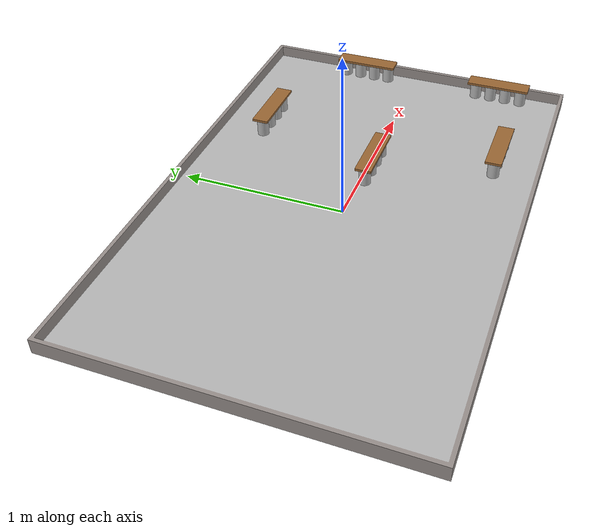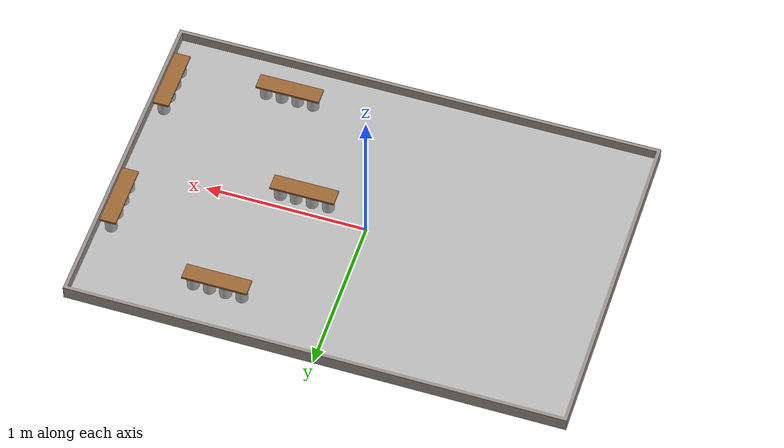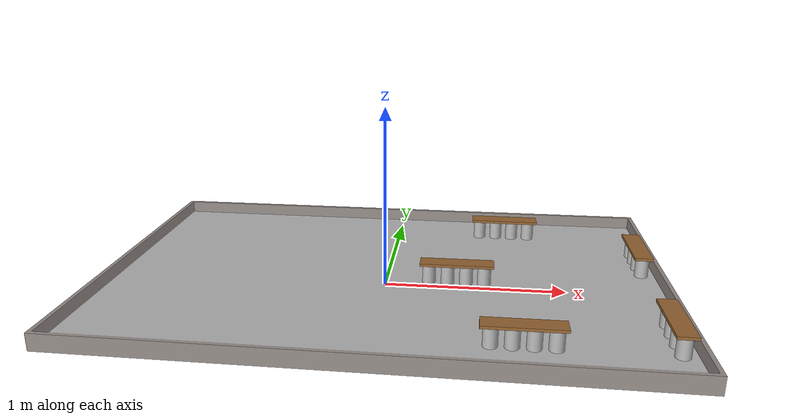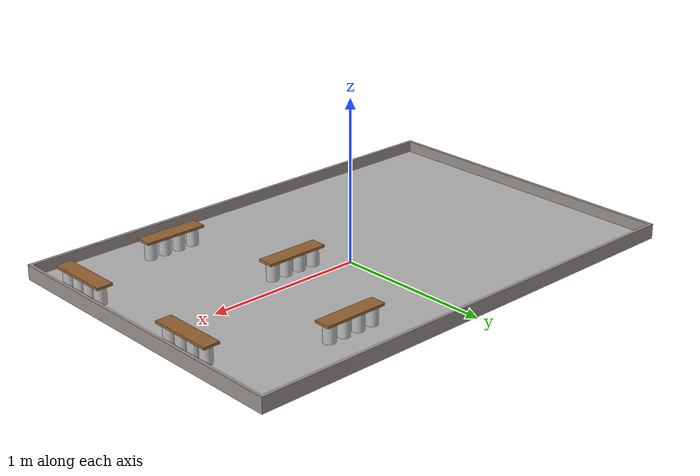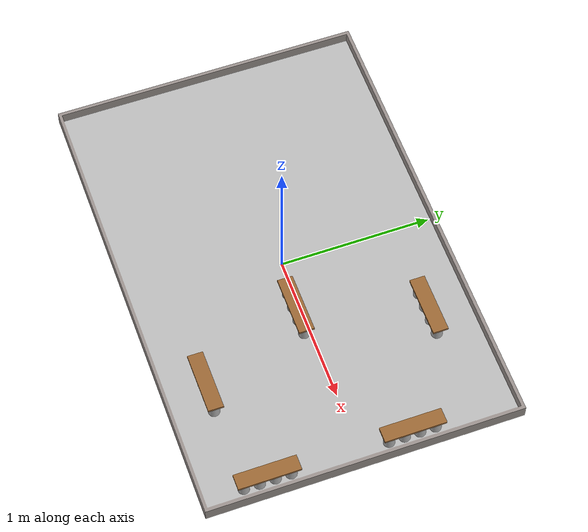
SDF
<sdf version="1.7">
 <world name="default">
  <model name="Table2025">
   <static>1</static>
   <link name="table">
    <inertial>
     <mass>108.217</mass>
     <inertia>
      <ixx>42.128</ixx>
      <ixy>-4.25029e-14</ixy>
      <ixz>6.83557e-16</ixz>
      <iyy>90.1988</iyy>
      <iyz>0</iyz>
      <izz>132.268</izz>
     </inertia>
    </inertial>
    <collision name="table_collision">
     <geometry><mesh><scale>1 1 1</scale><uri>model://Table2025/meshes/Table2025.dae</uri></mesh></geometry>
    </collision>
    <visual name="table_visual">
     <geometry><mesh><scale>1 1 1</scale><uri>model://Table2025/meshes/Table2025.dae</uri></mesh></geometry>
    </visual>
   </link>
  </model>
  <model name="Can_31">
   <static>0</static>
   <plugin name="gz::sim::systems::Label" filename="gz-sim-label-system"><label>11</label></plugin>
   <link name="link_0">
    <inertial>
     <pose>0 0 0.02 0 -0 0</pose>
     <mass>0.025</mass>
     <inertia><ixx>2.5e-05</ixx><ixy>0</ixy><ixz>0</ixz><iyy>2.5e-05</iyy><iyz>0</iyz><izz>8e-06</izz></inertia>
    </inertial>
    <visual name="visual">
     <geometry><mesh><uri>model://Can/meshes/can.dae</uri><scale>1 1 1</scale></mesh></geometry>
    </visual>
    <collision name="collision">
     <max_contacts>20</max_contacts>
     <pose>0 0 0.0545 0 -0 0</pose>
     <geometry><cylinder><radius>0.0365</radius><length>0.109</length></cylinder></geometry>
     <surface>
      <friction><ode><mu>0.9</mu><mu2>0.9</mu2></ode></friction>
      <contact>
       <ode>
        <soft_cfm>0</soft_cfm>
        <soft_erp>0.2</soft_erp>
        <kp>10</kp>
        <kd>1e+09</kd>
        <max_vel>0.01</max_vel>
        <min_depth>0.001</min_depth>
       </ode>
      </contact>
     </surface>
    </collision>
   </link>
   <pose>0.524631 0.725786 0.047323 -3.6e-05 5.5e-05 0</pose>
  </model>
  <model name="Can_33">
   <static>0</static>
   <plugin name="gz::sim::systems::Label" filename="gz-sim-label-system"><label>11</label></plugin>
   <link name="link_0">
    <inertial>
     <pose>0 0 0.02 0 -0 0</pose>
     <mass>0.025</mass>
     <inertia><ixx>2.5e-05</ixx><ixy>0</ixy><ixz>0</ixz><iyy>2.5e-05</iyy><iyz>0</iyz><izz>8e-06</izz></inertia>
    </inertial>
    <visual name="visual">
     <geometry><mesh><uri>model://Can/meshes/can.dae</uri><scale>1 1 1</scale></mesh></geometry>
    </visual>
    <collision name="collision">
     <max_contacts>20</max_contacts>
     <pose>0 0 0.0545 0 -0 0</pose>
     <geometry><cylinder><radius>0.0365</radius><length>0.109</length></cylinder></geometry>
     <surface>
      <friction><ode><mu>0.9</mu><mu2>0.9</mu2></ode></friction>
      <contact>
       <ode>
        <soft_cfm>0</soft_cfm>
        <soft_erp>0.2</soft_erp>
        <kp>10</kp>
        <kd>1e+09</kd>
        <max_vel>0.01</max_vel>
        <min_depth>0.001</min_depth>
       </ode>
      </contact>
     </surface>
    </collision>
   </link>
   <pose>0.625282 0.726048 0.047322 -4.3e-05 5.6e-05 0</pose>
  </model>
  <model name="Can_34">
   <static>0</static>
   <plugin name="gz::sim::systems::Label" filename="gz-sim-label-system"><label>11</label></plugin>
   <link name="link_0">
    <inertial>
     <pose>0 0 0.02 0 -0 0</pose>
     <mass>0.025</mass>
     <inertia><ixx>2.5e-05</ixx><ixy>0</ixy><ixz>0</ixz><iyy>2.5e-05</iyy><iyz>0</iyz><izz>8e-06</izz></inertia>
    </inertial>
    <visual name="visual">
     <geometry><mesh><uri>model://Can/meshes/can.dae</uri><scale>1 1 1</scale></mesh></geometry>
    </visual>
    <collision name="collision">
     <max_contacts>20</max_contacts>
     <pose>0 0 0.0545 0 -0 0</pose>
     <geometry><cylinder><radius>0.0365</radius><length>0.109</length></cylinder></geometry>
     <surface>
      <friction><ode><mu>0.9</mu><mu2>0.9</mu2></ode></friction>
      <contact>
       <ode>
        <soft_cfm>0</soft_cfm>
        <soft_erp>0.2</soft_erp>
        <kp>10</kp>
        <kd>1e+09</kd>
        <max_vel>0.01</max_vel>
        <min_depth>0.001</min_depth>
       </ode>
      </contact>
     </surface>
    </collision>
   </link>
   <pose>0.72493 0.725553 0.047324 -2.9e-05 5.7e-05 0</pose>
  </model>
  <model name="Can_35">
   <static>0</static>
   <plugin name="gz::sim::systems::Label" filename="gz-sim-label-system"><label>11</label></plugin>
   <link name="link_0">
    <inertial>
     <pose>0 0 0.02 0 -0 0</pose>
     <mass>0.025</mass>
     <inertia><ixx>2.5e-05</ixx><ixy>0</ixy><ixz>0</ixz><iyy>2.5e-05</iyy><iyz>0</iyz><izz>8e-06</izz></inertia>
    </inertial>
    <visual name="visual">
     <geometry><mesh><uri>model://Can/meshes/can.dae</uri><scale>1 1 1</scale></mesh></geometry>
    </visual>
    <collision name="collision">
     <max_contacts>20</max_contacts>
     <pose>0 0 0.0545 0 -0 0</pose>
     <geometry><cylinder><radius>0.0365</radius><length>0.109</length></cylinder></geometry>
     <surface>
      <friction><ode><mu>0.9</mu><mu2>0.9</mu2></ode></friction>
      <contact>
       <ode>
        <soft_cfm>0</soft_cfm>
        <soft_erp>0.2</soft_erp>
        <kp>10</kp>
        <kd>1e+09</kd>
        <max_vel>0.01</max_vel>
        <min_depth>0.001</min_depth>
       </ode>
      </contact>
     </surface>
    </collision>
   </link>
   <pose>0.825085 0.725093 0.047323 -2e-05 5.4e-05 0</pose>
  </model>
  <model name="Can_36">
   <static>0</static>
   <plugin name="gz::sim::systems::Label" filename="gz-sim-label-system"><label>11</label></plugin>
   <link name="link_0">
    <inertial>
     <pose>0 0 0.02 0 -0 0</pose>
     <mass>0.025</mass>
     <inertia><ixx>2.5e-05</ixx><ixy>0</ixy><ixz>0</ixz><iyy>2.5e-05</iyy><iyz>0</iyz><izz>8e-06</izz></inertia>
    </inertial>
    <visual name="visual">
     <geometry><mesh><uri>model://Can/meshes/can.dae</uri><scale>1 1 1</scale></mesh></geometry>
    </visual>
    <collision name="collision">
     <max_contacts>20</max_contacts>
     <pose>0 0 0.0545 0 -0 0</pose>
     <geometry><cylinder><radius>0.0365</radius><length>0.109</length></cylinder></geometry>
     <surface>
      <friction><ode><mu>0.9</mu><mu2>0.9</mu2></ode></friction>
      <contact>
       <ode>
        <soft_cfm>0</soft_cfm>
        <soft_erp>0.2</soft_erp>
        <kp>10</kp>
        <kd>1e+09</kd>
        <max_vel>0.01</max_vel>
        <min_depth>0.001</min_depth>
       </ode>
      </contact>
     </surface>
    </collision>
   </link>
   <pose>1.42524 0.475414 0.047322 -0.000246 0.000298 0</pose>
  </model>
  <model name="Can_37">
   <static>0</static>
   <plugin name="gz::sim::systems::Label" filename="gz-sim-label-system"><label>11</label></plugin>
   <link name="link_0">
    <inertial>
     <pose>0 0 0.02 0 -0 0</pose>
     <mass>0.025</mass>
     <inertia><ixx>2.5e-05</ixx><ixy>0</ixy><ixz>0</ixz><iyy>2.5e-05</iyy><iyz>0</iyz><izz>8e-06</izz></inertia>
    </inertial>
    <visual name="visual">
     <geometry><mesh><uri>model://Can/meshes/can.dae</uri><scale>1 1 1</scale></mesh></geometry>
    </visual>
    <collision name="collision">
     <max_contacts>20</max_contacts>
     <pose>0 0 0.0545 0 -0 0</pose>
     <geometry><cylinder><radius>0.0365</radius><length>0.109</length></cylinder></geometry>
     <surface>
      <friction><ode><mu>0.9</mu><mu2>0.9</mu2></ode></friction>
      <contact>
       <ode>
        <soft_cfm>0</soft_cfm>
        <soft_erp>0.2</soft_erp>
        <kp>10</kp>
        <kd>1e+09</kd>
        <max_vel>0.01</max_vel>
        <min_depth>0.001</min_depth>
       </ode>
      </contact>
     </surface>
    </collision>
   </link>
   <pose>1.42521 0.375005 0.047323 -0.000219 0.000711 3e-06</pose>
  </model>
  <model name="Can_38">
   <static>0</static>
   <plugin name="gz::sim::systems::Label" filename="gz-sim-label-system"><label>11</label></plugin>
   <link name="link_0">
    <inertial>
     <pose>0 0 0.02 0 -0 0</pose>
     <mass>0.025</mass>
     <inertia><ixx>2.5e-05</ixx><ixy>0</ixy><ixz>0</ixz><iyy>2.5e-05</iyy><iyz>0</iyz><izz>8e-06</izz></inertia>
    </inertial>
    <visual name="visual">
     <geometry><mesh><uri>model://Can/meshes/can.dae</uri><scale>1 1 1</scale></mesh></geometry>
    </visual>
    <collision name="collision">
     <max_contacts>20</max_contacts>
     <pose>0 0 0.0545 0 -0 0</pose>
     <geometry><cylinder><radius>0.0365</radius><length>0.109</length></cylinder></geometry>
     <surface>
      <friction><ode><mu>0.9</mu><mu2>0.9</mu2></ode></friction>
      <contact>
       <ode>
        <soft_cfm>0</soft_cfm>
        <soft_erp>0.2</soft_erp>
        <kp>10</kp>
        <kd>1e+09</kd>
        <max_vel>0.01</max_vel>
        <min_depth>0.001</min_depth>
       </ode>
      </contact>
     </surface>
    </collision>
   </link>
   <pose>1.42548 0.274974 0.047329 0.000549 0.000614 6e-06</pose>
  </model>
  <model name="Can_10">
   <static>0</static>
   <plugin name="gz::sim::systems::Label" filename="gz-sim-label-system"><label>11</label></plugin>
   <link name="link_0">
    <inertial>
     <pose>0 0 0.02 0 -0 0</pose>
     <mass>0.025</mass>
     <inertia><ixx>2.5e-05</ixx><ixy>0</ixy><ixz>0</ixz><iyy>2.5e-05</iyy><iyz>0</iyz><izz>8e-06</izz></inertia>
    </inertial>
    <visual name="visual">
     <geometry><mesh><uri>model://Can/meshes/can.dae</uri><scale>1 1 1</scale></mesh></geometry>
    </visual>
    <collision name="collision">
     <max_contacts>20</max_contacts>
     <pose>0 0 0.0545 0 -0 0</pose>
     <geometry><cylinder><radius>0.0365</radius><length>0.109</length></cylinder></geometry>
     <surface>
      <friction><ode><mu>0.9</mu><mu2>0.9</mu2></ode></friction>
      <contact>
       <ode>
        <soft_cfm>0</soft_cfm>
        <soft_erp>0.2</soft_erp>
        <kp>10</kp>
        <kd>1e+09</kd>
        <max_vel>0.01</max_vel>
        <min_depth>0.001</min_depth>
       </ode>
      </contact>
     </surface>
    </collision>
   </link>
   <pose>1.42613 0.174484 0.047323 0 -0 0</pose>
  </model>
  <model name="Can_11">
   <static>0</static>
   <plugin name="gz::sim::systems::Label" filename="gz-sim-label-system"><label>11</label></plugin>
   <link name="link_0">
    <inertial>
     <pose>0 0 0.02 0 -0 0</pose>
     <mass>0.025</mass>
     <inertia><ixx>2.5e-05</ixx><ixy>0</ixy><ixz>0</ixz><iyy>2.5e-05</iyy><iyz>0</iyz><izz>8e-06</izz></inertia>
    </inertial>
    <visual name="visual">
     <geometry><mesh><uri>model://Can/meshes/can.dae</uri><scale>1 1 1</scale></mesh></geometry>
    </visual>
    <collision name="collision">
     <max_contacts>20</max_contacts>
     <pose>0 0 0.0545 0 -0 0</pose>
     <geometry><cylinder><radius>0.0365</radius><length>0.109</length></cylinder></geometry>
     <surface>
      <friction><ode><mu>0.9</mu><mu2>0.9</mu2></ode></friction>
      <contact>
       <ode>
        <soft_cfm>0</soft_cfm>
        <soft_erp>0.2</soft_erp>
        <kp>10</kp>
        <kd>1e+09</kd>
        <max_vel>0.01</max_vel>
        <min_depth>0.001</min_depth>
       </ode>
      </contact>
     </surface>
    </collision>
   </link>
   <pose>1.4255 -0.449936 0.047322 -0.00011 0.00019 0</pose>
  </model>
  <model name="Can_12">
   <static>0</static>
   <plugin name="gz::sim::systems::Label" filename="gz-sim-label-system"><label>11</label></plugin>
   <link name="link_0">
    <inertial>
     <pose>0 0 0.02 0 -0 0</pose>
     <mass>0.025</mass>
     <inertia><ixx>2.5e-05</ixx><ixy>0</ixy><ixz>0</ixz><iyy>2.5e-05</iyy><iyz>0</iyz><izz>8e-06</izz></inertia>
    </inertial>
    <visual name="visual">
     <geometry><mesh><uri>model://Can/meshes/can.dae</uri><scale>1 1 1</scale></mesh></geometry>
    </visual>
    <collision name="collision">
     <max_contacts>20</max_contacts>
     <pose>0 0 0.0545 0 -0 0</pose>
     <geometry><cylinder><radius>0.0365</radius><length>0.109</length></cylinder></geometry>
     <surface>
      <friction><ode><mu>0.9</mu><mu2>0.9</mu2></ode></friction>
      <contact>
       <ode>
        <soft_cfm>0</soft_cfm>
        <soft_erp>0.2</soft_erp>
        <kp>10</kp>
        <kd>1e+09</kd>
        <max_vel>0.01</max_vel>
        <min_depth>0.001</min_depth>
       </ode>
      </contact>
     </surface>
    </collision>
   </link>
   <pose>1.42505 -0.550146 0.047323 -0.000122 0.000419 2e-06</pose>
  </model>
  <model name="Can_13">
   <static>0</static>
   <plugin name="gz::sim::systems::Label" filename="gz-sim-label-system"><label>11</label></plugin>
   <link name="link_0">
    <inertial>
     <pose>0 0 0.02 0 -0 0</pose>
     <mass>0.025</mass>
     <inertia><ixx>2.5e-05</ixx><ixy>0</ixy><ixz>0</ixz><iyy>2.5e-05</iyy><iyz>0</iyz><izz>8e-06</izz></inertia>
    </inertial>
    <visual name="visual">
     <geometry><mesh><uri>model://Can/meshes/can.dae</uri><scale>1 1 1</scale></mesh></geometry>
    </visual>
    <collision name="collision">
     <max_contacts>20</max_contacts>
     <pose>0 0 0.0545 0 -0 0</pose>
     <geometry><cylinder><radius>0.0365</radius><length>0.109</length></cylinder></geometry>
     <surface>
      <friction><ode><mu>0.9</mu><mu2>0.9</mu2></ode></friction>
      <contact>
       <ode>
        <soft_cfm>0</soft_cfm>
        <soft_erp>0.2</soft_erp>
        <kp>10</kp>
        <kd>1e+09</kd>
        <max_vel>0.01</max_vel>
        <min_depth>0.001</min_depth>
       </ode>
      </contact>
     </surface>
    </collision>
   </link>
   <pose>1.42525 -0.649943 0.047323 -0.000126 0.000479 1e-06</pose>
  </model>
  <model name="Can_14">
   <static>0</static>
   <plugin name="gz::sim::systems::Label" filename="gz-sim-label-system"><label>11</label></plugin>
   <link name="link_0">
    <inertial>
     <pose>0 0 0.02 0 -0 0</pose>
     <mass>0.025</mass>
     <inertia><ixx>2.5e-05</ixx><ixy>0</ixy><ixz>0</ixz><iyy>2.5e-05</iyy><iyz>0</iyz><izz>8e-06</izz></inertia>
    </inertial>
    <visual name="visual">
     <geometry><mesh><uri>model://Can/meshes/can.dae</uri><scale>1 1 1</scale></mesh></geometry>
    </visual>
    <collision name="collision">
     <max_contacts>20</max_contacts>
     <pose>0 0 0.0545 0 -0 0</pose>
     <geometry><cylinder><radius>0.0365</radius><length>0.109</length></cylinder></geometry>
     <surface>
      <friction><ode><mu>0.9</mu><mu2>0.9</mu2></ode></friction>
      <contact>
       <ode>
        <soft_cfm>0</soft_cfm>
        <soft_erp>0.2</soft_erp>
        <kp>10</kp>
        <kd>1e+09</kd>
        <max_vel>0.01</max_vel>
        <min_depth>0.001</min_depth>
       </ode>
      </contact>
     </surface>
    </collision>
   </link>
   <pose>1.42505 -0.75008 0.047323 0 -0 0</pose>
  </model>
  <model name="Can_15">
   <static>0</static>
   <plugin name="gz::sim::systems::Label" filename="gz-sim-label-system"><label>11</label></plugin>
   <link name="link_0">
    <inertial>
     <pose>0 0 0.02 0 -0 0</pose>
     <mass>0.025</mass>
     <inertia><ixx>2.5e-05</ixx><ixy>0</ixy><ixz>0</ixz><iyy>2.5e-05</iyy><iyz>0</iyz><izz>8e-06</izz></inertia>
    </inertial>
    <visual name="visual">
     <geometry><mesh><uri>model://Can/meshes/can.dae</uri><scale>1 1 1</scale></mesh></geometry>
    </visual>
    <collision name="collision">
     <max_contacts>20</max_contacts>
     <pose>0 0 0.0545 0 -0 0</pose>
     <geometry><cylinder><radius>0.0365</radius><length>0.109</length></cylinder></geometry>
     <surface>
      <friction><ode><mu>0.9</mu><mu2>0.9</mu2></ode></friction>
      <contact>
       <ode>
        <soft_cfm>0</soft_cfm>
        <soft_erp>0.2</soft_erp>
        <kp>10</kp>
        <kd>1e+09</kd>
        <max_vel>0.01</max_vel>
        <min_depth>0.001</min_depth>
       </ode>
      </contact>
     </surface>
    </collision>
   </link>
   <pose>0.249592 -0.049779 0.047325 -4.4e-05 -3.4e-05 0</pose>
  </model>
  <model name="Can_16">
   <static>0</static>
   <plugin name="gz::sim::systems::Label" filename="gz-sim-label-system"><label>11</label></plugin>
   <link name="link_0">
    <inertial>
     <pose>0 0 0.02 0 -0 0</pose>
     <mass>0.025</mass>
     <inertia><ixx>2.5e-05</ixx><ixy>0</ixy><ixz>0</ixz><iyy>2.5e-05</iyy><iyz>0</iyz><izz>8e-06</izz></inertia>
    </inertial>
    <visual name="visual">
     <geometry><mesh><uri>model://Can/meshes/can.dae</uri><scale>1 1 1</scale></mesh></geometry>
    </visual>
    <collision name="collision">
     <max_contacts>20</max_contacts>
     <pose>0 0 0.0545 0 -0 0</pose>
     <geometry><cylinder><radius>0.0365</radius><length>0.109</length></cylinder></geometry>
     <surface>
      <friction><ode><mu>0.9</mu><mu2>0.9</mu2></ode></friction>
      <contact>
       <ode>
        <soft_cfm>0</soft_cfm>
        <soft_erp>0.2</soft_erp>
        <kp>10</kp>
        <kd>1e+09</kd>
        <max_vel>0.01</max_vel>
        <min_depth>0.001</min_depth>
       </ode>
      </contact>
     </surface>
    </collision>
   </link>
   <pose>0.351194 -0.051121 0.047327 0.000565 2.5e-05 4e-06</pose>
  </model>
  <model name="Can_17">
   <static>0</static>
   <plugin name="gz::sim::systems::Label" filename="gz-sim-label-system"><label>11</label></plugin>
   <link name="link_0">
    <inertial>
     <pose>0 0 0.02 0 -0 0</pose>
     <mass>0.025</mass>
     <inertia><ixx>2.5e-05</ixx><ixy>0</ixy><ixz>0</ixz><iyy>2.5e-05</iyy><iyz>0</iyz><izz>8e-06</izz></inertia>
    </inertial>
    <visual name="visual">
     <geometry><mesh><uri>model://Can/meshes/can.dae</uri><scale>1 1 1</scale></mesh></geometry>
    </visual>
    <collision name="collision">
     <max_contacts>20</max_contacts>
     <pose>0 0 0.0545 0 -0 0</pose>
     <geometry><cylinder><radius>0.0365</radius><length>0.109</length></cylinder></geometry>
     <surface>
      <friction><ode><mu>0.9</mu><mu2>0.9</mu2></ode></friction>
      <contact>
       <ode>
        <soft_cfm>0</soft_cfm>
        <soft_erp>0.2</soft_erp>
        <kp>10</kp>
        <kd>1e+09</kd>
        <max_vel>0.01</max_vel>
        <min_depth>0.001</min_depth>
       </ode>
      </contact>
     </surface>
    </collision>
   </link>
   <pose>0.451754 -0.050976 0.047323 0.000482 2.8e-05 2e-06</pose>
  </model>
  <model name="Can_18">
   <static>0</static>
   <plugin name="gz::sim::systems::Label" filename="gz-sim-label-system"><label>11</label></plugin>
   <link name="link_0">
    <inertial>
     <pose>0 0 0.02 0 -0 0</pose>
     <mass>0.025</mass>
     <inertia><ixx>2.5e-05</ixx><ixy>0</ixy><ixz>0</ixz><iyy>2.5e-05</iyy><iyz>0</iyz><izz>8e-06</izz></inertia>
    </inertial>
    <visual name="visual">
     <geometry><mesh><uri>model://Can/meshes/can.dae</uri><scale>1 1 1</scale></mesh></geometry>
    </visual>
    <collision name="collision">
     <max_contacts>20</max_contacts>
     <pose>0 0 0.0545 0 -0 0</pose>
     <geometry><cylinder><radius>0.0365</radius><length>0.109</length></cylinder></geometry>
     <surface>
      <friction><ode><mu>0.9</mu><mu2>0.9</mu2></ode></friction>
      <contact>
       <ode>
        <soft_cfm>0</soft_cfm>
        <soft_erp>0.2</soft_erp>
        <kp>10</kp>
        <kd>1e+09</kd>
        <max_vel>0.01</max_vel>
        <min_depth>0.001</min_depth>
       </ode>
      </contact>
     </surface>
    </collision>
   </link>
   <pose>0.549782 -0.049608 0.047323 0.000268 2.1e-05 0</pose>
  </model>
  <model name="Can_28">
   <static>0</static>
   <plugin name="gz::sim::systems::Label" filename="gz-sim-label-system"><label>11</label></plugin>
   <link name="link_0">
    <inertial>
     <pose>0 0 0.02 0 -0 0</pose>
     <mass>0.025</mass>
     <inertia><ixx>2.5e-05</ixx><ixy>0</ixy><ixz>0</ixz><iyy>2.5e-05</iyy><iyz>0</iyz><izz>8e-06</izz></inertia>
    </inertial>
    <visual name="visual">
     <geometry><mesh><uri>model://Can/meshes/can.dae</uri><scale>1 1 1</scale></mesh></geometry>
    </visual>
    <collision name="collision">
     <max_contacts>20</max_contacts>
     <pose>0 0 0.0545 0 -0 0</pose>
     <geometry><cylinder><radius>0.0365</radius><length>0.109</length></cylinder></geometry>
     <surface>
      <friction><ode><mu>0.9</mu><mu2>0.9</mu2></ode></friction>
      <contact>
       <ode>
        <soft_cfm>0</soft_cfm>
        <soft_erp>0.2</soft_erp>
        <kp>10</kp>
        <kd>1e+09</kd>
        <max_vel>0.01</max_vel>
        <min_depth>0.001</min_depth>
       </ode>
      </contact>
     </surface>
    </collision>
   </link>
   <pose>0.575239 -0.750474 0.047323 -8.3e-05 -4e-06 0</pose>
  </model>
  <model name="Can_29">
   <static>0</static>
   <plugin name="gz::sim::systems::Label" filename="gz-sim-label-system"><label>11</label></plugin>
   <link name="link_0">
    <inertial>
     <pose>0 0 0.02 0 -0 0</pose>
     <mass>0.025</mass>
     <inertia><ixx>2.5e-05</ixx><ixy>0</ixy><ixz>0</ixz><iyy>2.5e-05</iyy><iyz>0</iyz><izz>8e-06</izz></inertia>
    </inertial>
    <visual name="visual">
     <geometry><mesh><uri>model://Can/meshes/can.dae</uri><scale>1 1 1</scale></mesh></geometry>
    </visual>
    <collision name="collision">
     <max_contacts>20</max_contacts>
     <pose>0 0 0.0545 0 -0 0</pose>
     <geometry><cylinder><radius>0.0365</radius><length>0.109</length></cylinder></geometry>
     <surface>
      <friction><ode><mu>0.9</mu><mu2>0.9</mu2></ode></friction>
      <contact>
       <ode>
        <soft_cfm>0</soft_cfm>
        <soft_erp>0.2</soft_erp>
        <kp>10</kp>
        <kd>1e+09</kd>
        <max_vel>0.01</max_vel>
        <min_depth>0.001</min_depth>
       </ode>
      </contact>
     </surface>
    </collision>
   </link>
   <pose>0.675164 -0.750595 0.047324 -0.000125 -9e-06 0</pose>
  </model>
  <model name="Can_30">
   <static>0</static>
   <plugin name="gz::sim::systems::Label" filename="gz-sim-label-system"><label>11</label></plugin>
   <link name="link_0">
    <inertial>
     <pose>0 0 0.02 0 -0 0</pose>
     <mass>0.025</mass>
     <inertia><ixx>2.5e-05</ixx><ixy>0</ixy><ixz>0</ixz><iyy>2.5e-05</iyy><iyz>0</iyz><izz>8e-06</izz></inertia>
    </inertial>
    <visual name="visual">
     <geometry><mesh><uri>model://Can/meshes/can.dae</uri><scale>1 1 1</scale></mesh></geometry>
    </visual>
    <collision name="collision">
     <max_contacts>20</max_contacts>
     <pose>0 0 0.0545 0 -0 0</pose>
     <geometry><cylinder><radius>0.0365</radius><length>0.109</length></cylinder></geometry>
     <surface>
      <friction><ode><mu>0.9</mu><mu2>0.9</mu2></ode></friction>
      <contact>
       <ode>
        <soft_cfm>0</soft_cfm>
        <soft_erp>0.2</soft_erp>
        <kp>10</kp>
        <kd>1e+09</kd>
        <max_vel>0.01</max_vel>
        <min_depth>0.001</min_depth>
       </ode>
      </contact>
     </surface>
    </collision>
   </link>
   <pose>0.775098 -0.750286 0.047324 -0.00013 -8e-06 0</pose>
  </model>
  <model name="Can_32">
   <static>0</static>
   <plugin name="gz::sim::systems::Label" filename="gz-sim-label-system"><label>11</label></plugin>
   <link name="link_0">
    <inertial>
     <pose>0 0 0.02 0 -0 0</pose>
     <mass>0.025</mass>
     <inertia><ixx>2.5e-05</ixx><ixy>0</ixy><ixz>0</ixz><iyy>2.5e-05</iyy><iyz>0</iyz><izz>8e-06</izz></inertia>
    </inertial>
    <visual name="visual">
     <geometry><mesh><uri>model://Can/meshes/can.dae</uri><scale>1 1 1</scale></mesh></geometry>
    </visual>
    <collision name="collision">
     <max_contacts>20</max_contacts>
     <pose>0 0 0.0545 0 -0 0</pose>
     <geometry><cylinder><radius>0.0365</radius><length>0.109</length></cylinder></geometry>
     <surface>
      <friction><ode><mu>0.9</mu><mu2>0.9</mu2></ode></friction>
      <contact>
       <ode>
        <soft_cfm>0</soft_cfm>
        <soft_erp>0.2</soft_erp>
        <kp>10</kp>
        <kd>1e+09</kd>
        <max_vel>0.01</max_vel>
        <min_depth>0.001</min_depth>
       </ode>
      </contact>
     </surface>
    </collision>
   </link>
   <pose>0.874951 -0.750126 0.047323 -6.9e-05 -4e-06 0</pose>
  </model>
  <model name="plank_1">
   <static>0</static>
   <plugin name="gz::sim::systems::Label" filename="gz-sim-label-system"><label>10</label></plugin>
   <link name="link_0">
    <inertial>
     <pose>0 0 0.02 0 -0 0</pose>
     <mass>0.025</mass>
     <inertia><ixx>2.5e-05</ixx><ixy>0</ixy><ixz>0</ixz><iyy>2.5e-05</iyy><iyz>0</iyz><izz>8e-06</izz></inertia>
    </inertial>
    <visual name="visual">
     <geometry><box><size>0.4 0.1 0.015</size></box></geometry>
     <material>
      <ambient>0.6 0.4 0.2 1</ambient>
      <diffuse>0.6 0.4 0.2 1</diffuse>
      <specular>0.1 0.1 0.1 1</specular>
      <emissive>0 0 0 1</emissive>
     </material>
    </visual>
    <collision name="collision">
     <max_contacts>100</max_contacts>
     <geometry><box><size>0.4 0.1 0.015</size></box></geometry>
     <surface>
      <bounce><restitution_coefficient>0</restitution_coefficient><threshold>100000</threshold></bounce>
      <friction><ode><mu>2</mu><mu2>2</mu2></ode></friction>
      <contact>
       <ode>
        <soft_cfm>0</soft_cfm>
        <soft_erp>0.8</soft_erp>
        <kp>100000</kp>
        <kd>1</kd>
        <max_vel>0.1</max_vel>
        <min_depth>0.01</min_depth>
       </ode>
      </contact>
      <torsional>
       <coefficient>1</coefficient>
       <patch_radius>0.05</patch_radius>
       <surface_radius>0.05</surface_radius>
       <use_patch_radius>1</use_patch_radius>
       <ode><slip>0</slip></ode>
      </torsional>
     </surface>
    </collision>
   </link>
   <pose>0.677549 0.724113 0.163723 -0.002282 0.000681 -0.000271</pose>
  </model>
  <model name="plank_2">
   <static>0</static>
   <plugin name="gz::sim::systems::Label" filename="gz-sim-label-system"><label>10</label></plugin>
   <link name="link_0">
    <inertial>
     <pose>0 0 0.02 0 -0 0</pose>
     <mass>0.025</mass>
     <inertia><ixx>2.5e-05</ixx><ixy>0</ixy><ixz>0</ixz><iyy>2.5e-05</iyy><iyz>0</iyz><izz>8e-06</izz></inertia>
    </inertial>
    <visual name="visual">
     <geometry><box><size>0.4 0.1 0.015</size></box></geometry>
     <material>
      <ambient>0.6 0.4 0.2 1</ambient>
      <diffuse>0.6 0.4 0.2 1</diffuse>
      <specular>0.1 0.1 0.1 1</specular>
      <emissive>0 0 0 1</emissive>
     </material>
    </visual>
    <collision name="collision">
     <max_contacts>100</max_contacts>
     <geometry><box><size>0.4 0.1 0.015</size></box></geometry>
     <surface>
      <bounce><restitution_coefficient>0</restitution_coefficient><threshold>100000</threshold></bounce>
      <friction><ode><mu>2</mu><mu2>2</mu2></ode></friction>
      <contact>
       <ode>
        <soft_cfm>0</soft_cfm>
        <soft_erp>0.8</soft_erp>
        <kp>100000</kp>
        <kd>1</kd>
        <max_vel>0.1</max_vel>
        <min_depth>0.01</min_depth>
       </ode>
      </contact>
      <torsional>
       <coefficient>1</coefficient>
       <patch_radius>0.05</patch_radius>
       <surface_radius>0.05</surface_radius>
       <use_patch_radius>1</use_patch_radius>
       <ode><slip>0</slip></ode>
      </torsional>
     </surface>
    </collision>
   </link>
   <pose>1.42405 0.324699 0.16345 0.000905 0.004568 1.57366</pose>
  </model>
  <model name="plank_7">
   <static>0</static>
   <plugin name="gz::sim::systems::Label" filename="gz-sim-label-system"><label>10</label></plugin>
   <link name="link_0">
    <inertial>
     <pose>0 0 0.02 0 -0 0</pose>
     <mass>0.025</mass>
     <inertia><ixx>2.5e-05</ixx><ixy>0</ixy><ixz>0</ixz><iyy>2.5e-05</iyy><iyz>0</iyz><izz>8e-06</izz></inertia>
    </inertial>
    <visual name="visual">
     <geometry><box><size>0.4 0.1 0.015</size></box></geometry>
     <material>
      <ambient>0.6 0.4 0.2 1</ambient>
      <diffuse>0.6 0.4 0.2 1</diffuse>
      <specular>0.1 0.1 0.1 1</specular>
      <emissive>0 0 0 1</emissive>
     </material>
    </visual>
    <collision name="collision">
     <max_contacts>100</max_contacts>
     <geometry><box><size>0.4 0.1 0.015</size></box></geometry>
     <surface>
      <bounce><restitution_coefficient>0</restitution_coefficient><threshold>100000</threshold></bounce>
      <friction><ode><mu>2</mu><mu2>2</mu2></ode></friction>
      <contact>
       <ode>
        <soft_cfm>0</soft_cfm>
        <soft_erp>0.8</soft_erp>
        <kp>100000</kp>
        <kd>1</kd>
        <max_vel>0.1</max_vel>
        <min_depth>0.01</min_depth>
       </ode>
      </contact>
      <torsional>
       <coefficient>1</coefficient>
       <patch_radius>0.05</patch_radius>
       <surface_radius>0.05</surface_radius>
       <use_patch_radius>1</use_patch_radius>
       <ode><slip>0</slip></ode>
      </torsional>
     </surface>
    </collision>
   </link>
   <pose>0.39998 -0.051673 0.16353 -0.009162 -0.002236 0.001776</pose>
  </model>
  <model name="plank_8">
   <static>0</static>
   <plugin name="gz::sim::systems::Label" filename="gz-sim-label-system"><label>10</label></plugin>
   <link name="link_0">
    <inertial>
     <pose>0 0 0.02 0 -0 0</pose>
     <mass>0.025</mass>
     <inertia><ixx>2.5e-05</ixx><ixy>0</ixy><ixz>0</ixz><iyy>2.5e-05</iyy><iyz>0</iyz><izz>8e-06</izz></inertia>
    </inertial>
    <visual name="visual">
     <geometry><box><size>0.4 0.1 0.015</size></box></geometry>
     <material>
      <ambient>0.6 0.4 0.2 1</ambient>
      <diffuse>0.6 0.4 0.2 1</diffuse>
      <specular>0.1 0.1 0.1 1</specular>
      <emissive>0 0 0 1</emissive>
     </material>
    </visual>
    <collision name="collision">
     <max_contacts>100</max_contacts>
     <geometry><box><size>0.4 0.1 0.015</size></box></geometry>
     <surface>
      <bounce><restitution_coefficient>0</restitution_coefficient><threshold>100000</threshold></bounce>
      <friction><ode><mu>2</mu><mu2>2</mu2></ode></friction>
      <contact>
       <ode>
        <soft_cfm>0</soft_cfm>
        <soft_erp>0.8</soft_erp>
        <kp>100000</kp>
        <kd>1</kd>
        <max_vel>0.1</max_vel>
        <min_depth>0.01</min_depth>
       </ode>
      </contact>
      <torsional>
       <coefficient>1</coefficient>
       <patch_radius>0.05</patch_radius>
       <surface_radius>0.05</surface_radius>
       <use_patch_radius>1</use_patch_radius>
       <ode><slip>0</slip></ode>
      </torsional>
     </surface>
    </collision>
   </link>
   <pose>0.723783 -0.750585 0.163649 -0.009661 -0.002269 0.001602</pose>
  </model>
  <model name="plank_3">
   <static>0</static>
   <plugin name="gz::sim::systems::Label" filename="gz-sim-label-system"><label>10</label></plugin>
   <link name="link_0">
    <inertial>
     <pose>0 0 0.02 0 -0 0</pose>
     <mass>0.025</mass>
     <inertia><ixx>2.5e-05</ixx><ixy>0</ixy><ixz>0</ixz><iyy>2.5e-05</iyy><iyz>0</iyz><izz>8e-06</izz></inertia>
    </inertial>
    <visual name="visual">
     <geometry><box><size>0.4 0.1 0.015</size></box></geometry>
     <material>
      <ambient>0.6 0.4 0.2 1</ambient>
      <diffuse>0.6 0.4 0.2 1</diffuse>
      <specular>0.1 0.1 0.1 1</specular>
      <emissive>0 0 0 1</emissive>
     </material>
    </visual>
    <collision name="collision">
     <max_contacts>100</max_contacts>
     <geometry><box><size>0.4 0.1 0.015</size></box></geometry>
     <surface>
      <bounce><restitution_coefficient>0</restitution_coefficient><threshold>100000</threshold></bounce>
      <friction><ode><mu>2</mu><mu2>2</mu2></ode></friction>
      <contact>
       <ode>
        <soft_cfm>0</soft_cfm>
        <soft_erp>0.8</soft_erp>
        <kp>100000</kp>
        <kd>1</kd>
        <max_vel>0.1</max_vel>
        <min_depth>0.01</min_depth>
       </ode>
      </contact>
      <torsional>
       <coefficient>1</coefficient>
       <patch_radius>0.05</patch_radius>
       <surface_radius>0.05</surface_radius>
       <use_patch_radius>1</use_patch_radius>
       <ode><slip>0</slip></ode>
      </torsional>
     </surface>
    </collision>
   </link>
   <pose>1.42376 -0.599851 0.163462 0.001175 0.004609 1.57369</pose>
  </model>
 </world>
</sdf>
